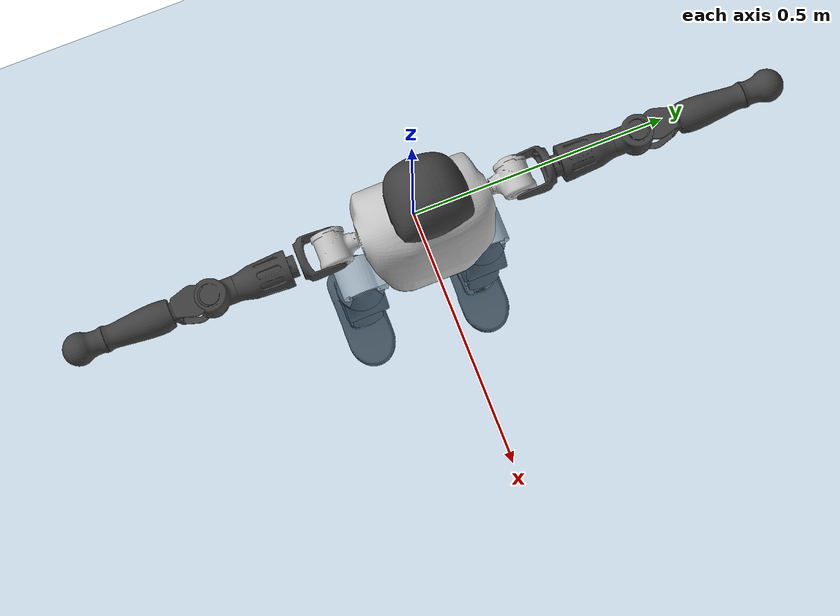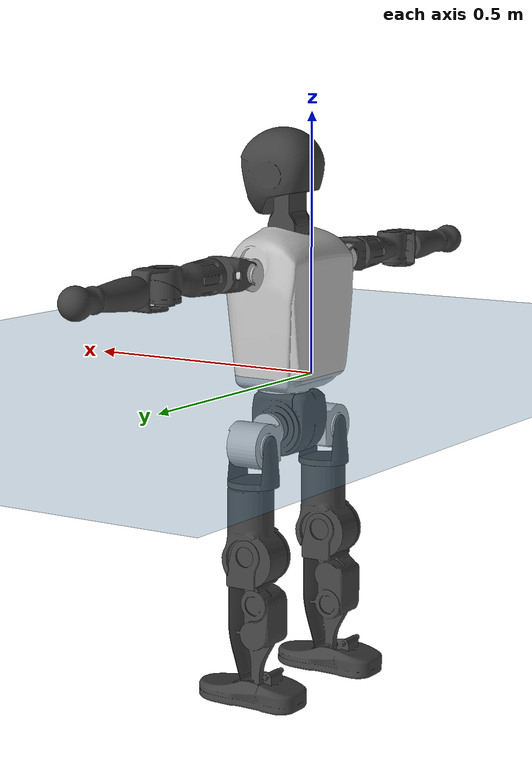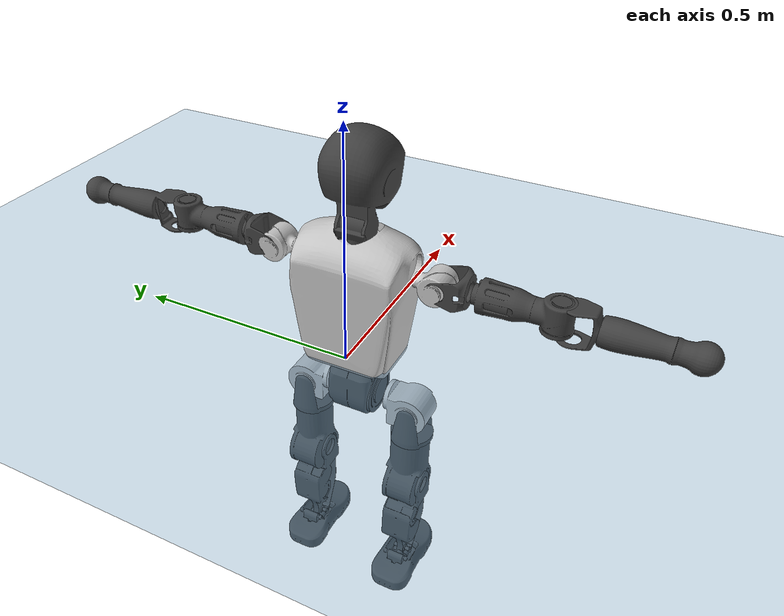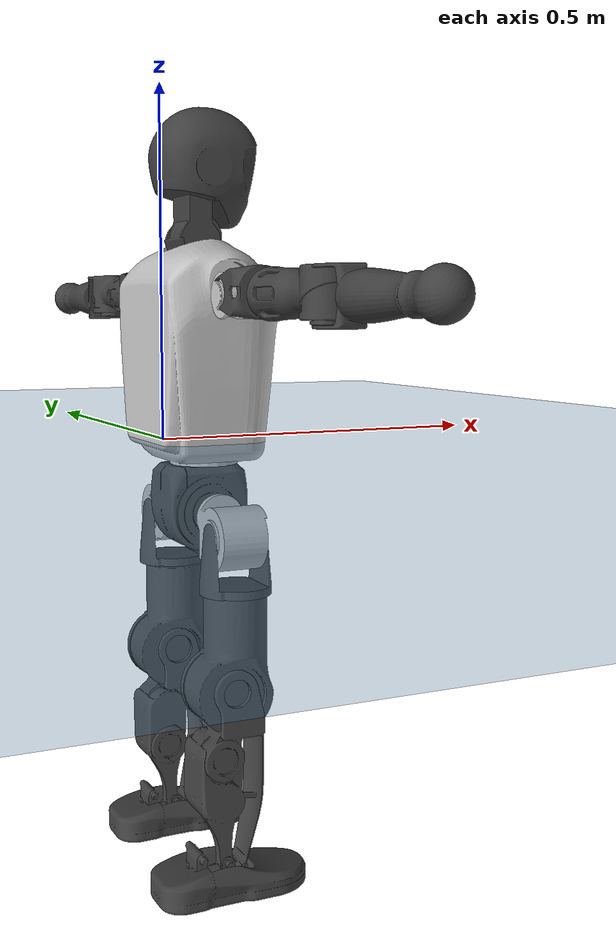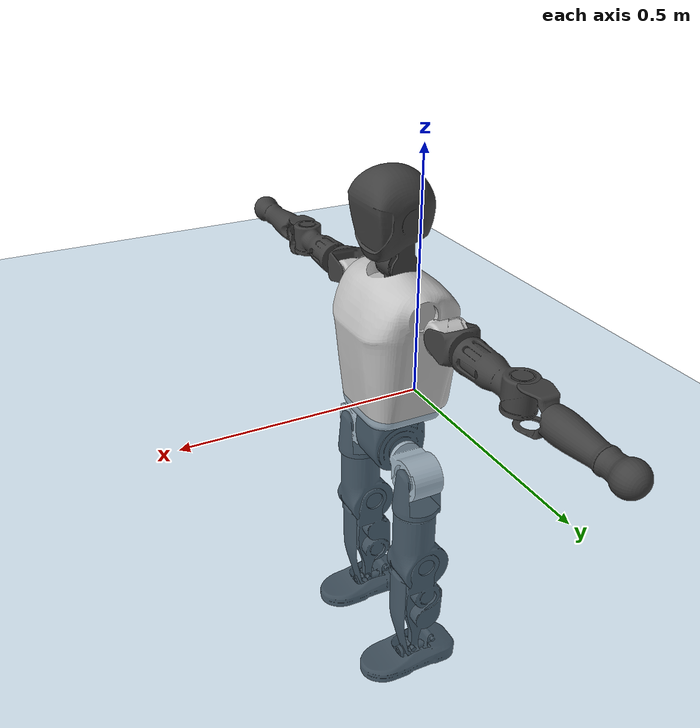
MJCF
<mujoco model="T1">
  <compiler angle="radian" assetdir="assets" balanceinertia="true" inertiafromgeom="false"/>

  <option timestep="0.005" density="1.2" viscosity="2e-05"/>

  <size nkey="1"/>

  <visual>
    <quality shadowsize="8192"/>
    <map shadowclip="0.5"/>
  </visual>

  <default>
    <default class="/">
      <joint armature="0.01" damping="0.01" frictionloss="0.1"/>
      <geom contype="0" conaffinity="0" group="1" solref="-1000 -80"/>
      <site size="0.01 0.005 0.005" group="5"/>
      <general forcelimited="true" biastype="affine" gainprm="25" biasprm="0 -25 -0.6"/>
      <default class="t1">
        <geom rgba="0.25 0.25 0.25 1"/>
        <default class="visual">
          <geom type="mesh" group="2"/>
        </default>
        <default class="collision">
          <geom group="3"/>
        </default>
        <default class="foot">
          <geom size="0.1115 0.05 0.015" type="box" condim="6" group="4" priority="1" solimp="0.015 1 0.015"/>
        </default>
        <default class="reward_collision_sphere">
          <geom group="5" rgba="1 0 0 1"/>
        </default>
      </default>
    </default>
  </default>

  <asset>
    <texture type="skybox" colorspace="auto" name="//unnamed_texture_0" builtin="gradient" rgb1="0.95 0.95 0.95" rgb2="0.95 0.95 0.95" width="100" height="600"/>
    <texture type="2d" colorspace="auto" name="texplane" builtin="checker" rgb1="0.345 0.575 0.748" rgb2="0.345 0.575 0.748" markrgb="1 1 1" width="512" height="512"/>
    <material name="MatPlane" class="/" texture="texplane" texuniform="true" texrepeat="2 2" specular="0.9"/>
    <mesh name="Trunk" class="/" file="Trunk.stl"/>
    <mesh name="H1" class="/" file="H1.stl"/>
    <mesh name="H2" class="/" file="H2.stl"/>
    <mesh name="AL1" class="/" file="AL1.stl"/>
    <mesh name="AL2" class="/" file="AL2.stl"/>
    <mesh name="AL3" class="/" file="AL3.stl"/>
    <mesh name="left_hand_link" class="/" file="left_hand_link.stl"/>
    <mesh name="AR1" class="/" file="AR1.stl"/>
    <mesh name="AR2" class="/" file="AR2.stl"/>
    <mesh name="AR3" class="/" file="AR3.stl"/>
    <mesh name="right_hand_link" class="/" file="right_hand_link.stl"/>
    <mesh name="Waist" class="/" file="Waist.stl"/>
    <mesh name="Hip_Pitch_Left" class="/" file="Hip_Pitch_Left.stl"/>
    <mesh name="Hip_Roll_Left" class="/" file="Hip_Roll_Left.stl"/>
    <mesh name="Hip_Yaw_Left" class="/" file="Hip_Yaw_Left.stl"/>
    <mesh name="Shank_Left" class="/" file="Shank_Left.stl"/>
    <mesh name="Ankle_Cross_Left" class="/" file="Ankle_Cross_Left.stl"/>
    <mesh name="left_foot_link" class="/" file="left_foot_link.stl"/>
    <mesh name="Hip_Pitch_Right" class="/" file="Hip_Pitch_Right.stl"/>
    <mesh name="Hip_Roll_Right" class="/" file="Hip_Roll_Right.stl"/>
    <mesh name="Hip_Yaw_Right" class="/" file="Hip_Yaw_Right.stl"/>
    <mesh name="Shank_Right" class="/" file="Shank_Right.stl"/>
    <mesh name="Ankle_Cross_Right" class="/" file="Ankle_Cross_Right.stl"/>
    <mesh name="right_foot_link" class="/" file="right_foot_link.stl"/>
  </asset>

  <worldbody>
    <geom name="floor" class="/" size="100 100 0.125" type="plane" group="0" material="MatPlane"/>
    <light name="toplight_shadow" class="/" pos="0 0 5" dir="0.0990148 0.0990148 -0.990148" type="directional" ambient="0.04 0.04 0.04" diffuse="0.55 0.55 0.55" specular="0.12 0.12 0.12"/>
    <light name="toplight_fill" class="/" pos="0 0 5" dir="0.0990148 0.0990148 -0.990148" type="directional" castshadow="false" ambient="0.04 0.04 0.04" diffuse="0.3 0.3 0.3" specular="0.08 0.08 0.08"/>
    <body name="trunk" childclass="t1" pos="0.000820373 -0.000330027 0.00411815" quat="0.999997 0.000410166 -0.00229458 0.000901855">
      <inertial pos="0.0476819 -0.00167298 0.0985421" quat="0.999967 -0.00201707 -0.00781481 0.00127881" mass="12.5593" diaginertia="0.0464691 0.210431 0.0381779"/>
      <joint name="//unnamed_joint_0" type="free" armature="0" damping="0" frictionloss="0"/>
      <geom name="//unnamed_geom_1" class="visual" rgba="0.76 0.76 0.76 1" mesh="Trunk"/>
      <geom name="//unnamed_geom_2" class="collision" size="0.0749492 0.0999323 0.149898" pos="0.0520538 0 0.110475" type="box"/>
      <geom name="//unnamed_geom_3" class="reward_collision_sphere" size="0.114922" pos="0.0520538 0 0.0920621"/>
      <geom name="//unnamed_geom_4" class="reward_collision_sphere" size="0.0149898" pos="0.0520538 0.102832 0"/>
      <geom name="//unnamed_geom_5" class="reward_collision_sphere" size="0.0149898" pos="0.0520538 -0.102832 0"/>
      <geom name="//unnamed_geom_6" class="reward_collision_sphere" size="0.0149898" pos="0.0520538 0.129447 0.165712"/>
      <geom name="//unnamed_geom_7" class="reward_collision_sphere" size="0.0149898" pos="0.0520538 -0.129447 0.165712"/>
      <site name="imu" pos="0.019678 -0.00952938 0.00240095" size="0.00999323"/>
      <camera name="track" pos="0 -2.41957 0" quat="0.707107 0.707107 0 0" mode="trackcom"/>
      <camera name="ego_camera" pos="0.105843 0 0.386661" quat="-0.5 -0.5 0.5 0.5"/>
      <body name="H1" pos="0.0530602 0.00013121 0.222006" quat="0.999999 -1.56003e-05 -0.000641333 0.00158799">
        <inertial pos="-0.0029442 -0.000999664 0.055327" quat="0.766051 -0.0169367 -0.0020012 0.642554" mass="0.455309" diaginertia="0.000123405 0.000575507 0.000103231"/>
        <joint name="AAHead_yaw" pos="0 0 0" axis="0.0050711 -0.00593378 0.99997" range="-1.45749 1.52452" armature="0.0107737" damping="0" frictionloss="0.10867"/>
        <geom name="//unnamed_geom_8" class="visual" mesh="H1"/>
        <body name="H2" pos="-0.00385436 0.00216871 0.0551254" quat="0.999997 0.00102914 0.00164851 -0.00117165">
          <inertial pos="0.00671362 0.00321296 0.0917472" quat="0.988526 0.106136 -0.073887 -0.0780478" mass="0.661489" diaginertia="0.00100365 0.00503497 0.00113552"/>
          <joint name="Head_pitch" pos="0 0 0" axis="0.0038129 -0.999829 -0.0180948" range="-1.19767 0.269339" armature="0.00852022" damping="0" frictionloss="0.0770003"/>
          <geom name="//unnamed_geom_9" class="visual" mesh="H2"/>
          <geom name="//unnamed_geom_10" class="collision" size="0.0799458" pos="0.00867563 0 0.101268"/>
          <geom name="//unnamed_geom_11" class="reward_collision_sphere" size="0.089939" pos="0.0173513 0 0.0920621"/>
        </body>
      </body>
      <body name="AL1" pos="0.0461208 0.129304 0.202506" quat="1 -0.000470454 -0.000748146 -0.000461946">
        <inertial pos="0.00398756 0.0528013 -0.0014373" quat="0.504955 0.500528 -0.499805 0.494659" mass="0.529914" diaginertia="0.000690977 0.00311259 0.00018896"/>
        <joint name="Left_Shoulder_Pitch" pos="0 0 0" axis="0.000677878 1 0.000452388" range="-3.34076 1.21406" armature="0.0105585" damping="0.0103323" frictionloss="0.0917396"/>
        <geom name="//unnamed_geom_12" class="visual" rgba="0.76 0.76 0.76 1" mesh="AL1"/>
        <body name="AL2" pos="0.0036936 0.0566545 0.00483833" quat="0.999998 -0.00134277 -0.00152341 5.09899e-05">
          <inertial pos="0.00185189 0.0455983 0.00294708" quat="0.488559 0.507409 -0.493582 0.510121" mass="0.155725" diaginertia="0.000190484 0.000893764 0.000119973"/>
          <joint name="Left_Shoulder_Roll" pos="0 0 0" axis="-0.999786 -0.0181955 -0.00981147" range="-1.58639 1.69175" armature="0.0113279" damping="0.00885756" frictionloss="0.120229"/>
          <geom name="//unnamed_geom_13" class="visual" mesh="AL2"/>
          <body name="AL3" pos="0.00454174 0.0725194 -0.000983716" quat="0.999999 0.00120827 -0.000652158 0.000519265">
            <inertial pos="-0.00265409 0.102972 -0.00319399" quat="0.707584 0.70662 0.00368537 -0.000231686" mass="1.0097" diaginertia="0.00646071 0.0326598 0.000409023"/>
            <joint name="Left_Elbow_Pitch" pos="0 0 0" axis="-0.0151181 -0.999851 0.00835178" range="-2.22718 2.27948" armature="0.00895133" damping="0.0101408" frictionloss="0.107656"/>
            <geom name="//unnamed_geom_14" class="visual" mesh="AL3"/>
            <geom name="//unnamed_geom_15" class="collision" size="0.0299797 0.0749492" pos="0 0.0604892 0" quat="0.707105 0.707108 0 0" type="cylinder"/>
            <geom name="//unnamed_geom_16" class="reward_collision_sphere" size="0.0359756"/>
            <body name="left_hand_link" pos="0.000539925 0.181844 -0.00491414" quat="1 0.00039375 -0.000852634 -0.000336098">
              <inertial pos="-0.000139188 0.133755 -0.000502372" quat="0.709804 0.704397 0.000547663 -0.0016357" mass="0.301068" diaginertia="0.0039801 0.0196463 0.00013319"/>
              <joint name="Left_Elbow_Yaw" pos="0 0 0" axis="-0.00144793 0.0144178 0.999895" stiffness="0.000304337" range="-2.39984 0.0129286" armature="0.0114468" damping="0.0147998" frictionloss="0.0989189"/>
              <geom name="//unnamed_geom_17" class="visual" mesh="left_hand_link"/>
              <geom name="//unnamed_geom_18" class="collision" size="0.0299797 0.0874407" pos="0 0.157272 0" quat="0.707105 0.707108 0 0" type="cylinder"/>
              <geom name="//unnamed_geom_19" class="reward_collision_sphere" size="0.0499661"/>
              <geom name="//unnamed_geom_20" class="reward_collision_sphere" size="0.0349763" pos="0 0.133076 0"/>
              <geom name="//unnamed_geom_21" class="reward_collision_sphere" size="0.0349763" pos="0 0.260104 0"/>
            </body>
          </body>
        </body>
      </body>
      <body name="AR1" pos="0.0485391 -0.124473 0.199376" quat="0.999999 -0.00164614 4.8234e-05 0.000240084">
        <inertial pos="-0.000423097 -0.0558747 0.00251363" quat="0.500595 0.495769 -0.508346 0.495179" mass="0.511657" diaginertia="0.000672482 0.00324059 0.000189575"/>
        <joint name="Right_Shoulder_Pitch" pos="0 0 0" axis="0.0134487 -0.999844 -0.0114808" stiffness="0.00997648" range="-1.23547 3.30295" armature="0.00902851" damping="0.0126352" frictionloss="0.109967"/>
        <geom name="//unnamed_geom_22" class="visual" rgba="0.76 0.76 0.76 1" mesh="AR1"/>
        <body name="AR2" pos="0.000711054 -0.053695 0.00355712" quat="1 -4.46607e-05 -3.03063e-05 4.09805e-05">
          <inertial pos="0.0015301 -0.0466034 -0.000484715" quat="0.511403 0.486827 -0.512153 0.489046" mass="0.165025" diaginertia="0.000184388 0.000866484 0.000120805"/>
          <joint name="Right_Shoulder_Roll" pos="0 0 0" axis="-0.999983 -0.00525228 -0.00269308" range="-1.68777 1.55731" armature="0.00973466" damping="0.0128646" frictionloss="0.0856014"/>
          <geom name="//unnamed_geom_23" class="visual" mesh="AR2"/>
          <body name="AR3" pos="0.00320067 -0.0752795 -0.00263249" quat="0.999999 0.000970928 -0.000748748 0.00019093">
            <inertial pos="0.00458259 -0.10257 0.00279101" quat="0.705851 0.708349 -0.00398582 2.46423e-05" mass="0.989928" diaginertia="0.00650098 0.0348962 0.000411278"/>
            <joint name="Right_Elbow_Pitch" pos="0 0 0" axis="-0.00398478 0.999991 0.00132869" stiffness="0.0221584" range="-2.25825 2.24944" armature="0.0109106" damping="0.00222012" frictionloss="0.0903512"/>
            <geom name="//unnamed_geom_24" class="visual" mesh="AR3"/>
            <geom name="//unnamed_geom_25" class="collision" size="0.0299797 0.0749492" pos="0 -0.0604892 0" quat="0.707105 0.707108 0 0" type="cylinder"/>
            <geom name="//unnamed_geom_26" class="reward_collision_sphere" size="0.0359756"/>
            <body name="right_hand_link" pos="-0.00101612 -0.176441 -0.00477946" quat="1 -0.000418238 8.104e-05 0.000459947">
              <inertial pos="0.000896139 -0.133982 -0.00154404" quat="0.707081 0.707043 -0.00858526 -0.00721844" mass="0.320138" diaginertia="0.00404678 0.0203297 0.000142139"/>
              <joint name="Right_Elbow_Yaw" pos="0 0 0" axis="-0.00132261 -0.00579066 0.999982" range="-0.0390003 2.44447" armature="0.00902378" damping="0.00300691" frictionloss="0.106993"/>
              <geom name="//unnamed_geom_27" class="visual" mesh="right_hand_link"/>
              <geom name="//unnamed_geom_28" class="collision" size="0.0299797 0.0874407" pos="0 -0.157272 0" quat="0.707105 0.707108 0 0" type="cylinder"/>
              <geom name="//unnamed_geom_29" class="reward_collision_sphere" size="0.0499661"/>
              <geom name="//unnamed_geom_30" class="reward_collision_sphere" size="0.0349763" pos="0 -0.133076 0"/>
              <geom name="//unnamed_geom_31" class="reward_collision_sphere" size="0.0349763" pos="0 -0.260104 0"/>
            </body>
          </body>
        </body>
      </body>
      <body name="Waist" pos="0.0519896 -0.00437788 -0.108025" quat="1 8.42661e-05 0.000400298 -0.00056046">
        <inertial pos="0.0033046 -0.000129064 0.00859718" quat="0.983681 -0.000192191 -0.179911 0.00198216" mass="2.65929" diaginertia="0.00272118 0.0135274 0.00322822"/>
        <joint name="Waist" pos="0 0 0" axis="0.00994722 -0.00877722 0.999912" range="-1.54391 1.58769" armature="0.00993813" damping="0.0214415" frictionloss="0.103998"/>
        <geom name="//unnamed_geom_32" class="visual" mesh="Waist"/>
        <body name="Hip_Pitch_Left" pos="0.00349585 0.123003 -0.00338224" quat="1 -3.90866e-05 -2.63601e-05 -1.30816e-05">
          <inertial pos="0.00125129 -0.00873047 -0.0117987" quat="0.976902 0.213282 0.0111354 -0.00707663" mass="0.969893" diaginertia="0.000882824 0.0038226 0.000851529"/>
          <joint name="Left_Hip_Pitch" pos="0 0 0" axis="-0.0001526 1 3.1629e-05" stiffness="0.00597409" range="-1.84446 1.57258" armature="0.00972993" damping="0.0153377" frictionloss="0.112302"/>
          <geom name="//unnamed_geom_33" class="visual" rgba="0.76 0.76 0.76 1" mesh="Hip_Pitch_Left"/>
          <body name="Hip_Roll_Left" pos="0.00158151 -0.000704125 -0.0216827" quat="1 -0.000304592 1.22087e-05 -0.000502788">
            <inertial pos="0.00103481 -0.00265225 -0.0488427" quat="0.705584 -0.0104475 -0.0104757 0.708471" mass="0.370826" diaginertia="0.000818196 0.00389047 0.000336767"/>
            <joint name="Left_Hip_Roll" pos="0 0 0" axis="-0.999961 -0.00811292 -0.00335664" stiffness="0.0060644" range="-1.58913 0.211883" armature="0.0100839" damping="0.00557999" frictionloss="0.104798"/>
            <geom name="//unnamed_geom_34" class="visual" mesh="Hip_Roll_Left"/>
            <geom name="//unnamed_geom_35" class="reward_collision_sphere" size="0.0549628"/>
            <body name="Hip_Yaw_Left" pos="0.0021794 0.00225711 -0.081156" quat="1 -0.000200131 -0.000173773 0.000222425">
              <inertial pos="-0.00328064 -0.000238811 -0.0784722" quat="0.689882 -0.0356044 -0.0285465 0.722482" mass="2.17817" diaginertia="0.0117408 0.0673139 0.00169837"/>
              <joint name="Left_Hip_Yaw" pos="0 0 0" axis="0.00596729 0.00532278 -0.999968" stiffness="0.0233732" range="-1.0026 0.977336" armature="0.0105276" damping="0.00116875" frictionloss="0.115073"/>
              <geom name="//unnamed_geom_36" class="visual" mesh="Hip_Yaw_Left"/>
              <geom name="//unnamed_geom_37" class="collision" size="0.0499661 0.0799458" type="cylinder"/>
              <body name="Shank_Left" pos="-0.0115283 -0.00352244 -0.126754" quat="0.999997 0.000181928 -0.00149879 -0.00177221">
                <inertial pos="-0.00403221 0.00586556 -0.116725" quat="0.998296 -0.00323635 -0.0281575 0.0509992" mass="1.75089" diaginertia="0.0168124 0.0889238 0.00125834"/>
                <joint name="Left_Knee_Pitch" pos="0 0 0" axis="0.00344141 0.999971 0.00674578" range="-0.0508899 2.34917" armature="0.00955386" damping="0" frictionloss="0.117453"/>
                <geom name="//unnamed_geom_38" class="visual" mesh="Shank_Left"/>
                <geom name="//unnamed_geom_39" class="collision" size="0.0499661 0.0749492" pos="0 0 -0.110475" type="cylinder"/>
                <geom name="//unnamed_geom_40" class="reward_collision_sphere" size="0.064956"/>
                <body name="Ankle_Cross_Left" pos="0.00458728 -0.00196223 -0.257831" quat="1 -0.000114947 5.76465e-05 0.000101075">
                  <inertial pos="-0.00106291 -0.00133029 -0.00635464" quat="0.459836 0.551425 0.535896 0.444181" mass="0.0769245" diaginertia="1.42138e-05 6.66104e-05 7.62792e-06"/>
                  <joint name="Left_Ankle_Pitch" pos="0 0 0" axis="-0.00258898 0.999996 -0.000788934" range="-0.895815 0.407175" armature="0.00958164" damping="0" frictionloss="0.10124"/>
                  <geom name="//unnamed_geom_41" class="visual" mesh="Ankle_Cross_Left"/>
                  <body name="left_foot_link" pos="-0.00155814 0.00082654 -0.011072" quat="1 -8.2713e-05 -0.000158504 -0.000122166">
                    <inertial pos="0.000175846 -3.20664e-05 -0.013662" quat="0.000352917 0.620507 -8.14274e-05 0.784201" mass="0.668741" diaginertia="0.00131133 0.00591953 0.00139937"/>
                    <joint name="Left_Ankle_Roll" pos="0 0 0" axis="-0.999995 0.000694558 -0.00302987" stiffness="0.00164844" range="-0.42696 0.467409" armature="0.0098671" damping="0" frictionloss="0.101763"/>
                    <geom name="//unnamed_geom_42" class="visual" mesh="left_foot_link"/>
                    <geom name="left_foot" class="foot" size="0.0972102 0.0428566 0.0154274" pos="0.00867563 0 -0.0138093"/>
                    <geom name="//unnamed_geom_44" class="reward_collision_sphere" size="0.0519648" pos="0.00867563 0 -0.0138093"/>
                    <geom name="//unnamed_geom_45" class="reward_collision_sphere" size="0.0299797" pos="0.0824184 -0.027825 -0.0138093"/>
                    <geom name="//unnamed_geom_46" class="reward_collision_sphere" size="0.0299797" pos="-0.0607294 -0.027825 -0.0138093"/>
                    <site name="left_foot" class="foot" pos="0.00867563 0 -0.0138093" size="0.00999323"/>
                  </body>
                </body>
              </body>
            </body>
          </body>
        </body>
        <body name="Hip_Pitch_Right" pos="0.000885473 -0.128984 -0.00310587" quat="0.999998 -3.13792e-05 0.00183483 -0.000605043">
          <inertial pos="-7.6076e-05 0.0138998 -0.0138891" quat="0.973634 -0.227123 0.0212406 -0.000349884" mass="1.05105" diaginertia="0.000938466 0.00391187 0.000859511"/>
          <joint name="Right_Hip_Pitch" pos="0 0 0" axis="-0.00302516 -0.999983 0.00490723" range="-1.57205 1.85418" armature="0.00965478" damping="0.00962431" frictionloss="0.0775006"/>
          <geom name="//unnamed_geom_47" class="visual" rgba="0.76 0.76 0.76 1" mesh="Hip_Pitch_Right"/>
          <body name="Hip_Roll_Right" pos="0.00290343 -0.0018718 -0.0199798" quat="1 0.000168445 0.000608039 0.000187218">
            <inertial pos="-0.000940232 -0.000800634 -0.0481167" quat="0.708408 -0.00545449 -0.00656941 0.705751" mass="0.383587" diaginertia="0.000915427 0.00401349 0.000348466"/>
            <joint name="Right_Hip_Roll" pos="0 0 0" axis="-0.999972 -0.0031058 -0.0067671" stiffness="0.0017758" range="-0.208391 1.52893" armature="0.0098009" damping="0" frictionloss="0.0890089"/>
            <geom name="//unnamed_geom_48" class="visual" mesh="Hip_Roll_Right"/>
            <geom name="//unnamed_geom_49" class="reward_collision_sphere" size="0.0549628"/>
            <body name="Hip_Yaw_Right" pos="-0.00237134 0.00108264 -0.0780303" quat="1 0.000629977 -0.000123372 -0.000253295">
              <inertial pos="-0.00359932 -0.00536614 -0.0798286" quat="0.714318 -0.0325073 -0.0363286 0.698121" mass="2.2489" diaginertia="0.0129384 0.071748 0.00178574"/>
              <joint name="Right_Hip_Yaw" pos="0 0 0" axis="-0.000248833 0.0121865 -0.999926" range="-0.968385 1.01976" armature="0.00995182" damping="0" frictionloss="0.0989171"/>
              <geom name="//unnamed_geom_50" class="visual" mesh="Hip_Yaw_Right"/>
              <geom name="//unnamed_geom_51" class="collision" size="0.0499661 0.0799458" type="cylinder"/>
              <body name="Shank_Right" pos="-0.0158035 -0.00223877 -0.128191" quat="1 1.92338e-05 0.000140055 0.000112287">
                <inertial pos="0.000606077 0.00217025 -0.112512" quat="0.999181 -0.0112304 -0.0361457 -0.0142875" mass="1.87006" diaginertia="0.0176756 0.0940878 0.00139137"/>
                <joint name="Right_Knee_Pitch" pos="0 0 0" axis="0.00647344 -0.999979 -0.000336318" stiffness="0.0060574" range="-2.33267 0.0613333" armature="0.00975961" damping="0.00717098" frictionloss="0.103883"/>
                <geom name="//unnamed_geom_52" class="visual" mesh="Shank_Right"/>
                <geom name="//unnamed_geom_53" class="collision" size="0.0499661 0.0749492" pos="0 0 -0.110475" type="cylinder"/>
                <geom name="//unnamed_geom_54" class="reward_collision_sphere" size="0.064956"/>
                <body name="Ankle_Cross_Right" pos="-0.000607956 -0.00131448 -0.255182" quat="0.999999 -0.000311868 -0.000452675 -0.000869293">
                  <inertial pos="-0.00419566 -0.000480971 -0.00910499" quat="0.443055 0.550464 0.552955 0.441512" mass="0.0703915" diaginertia="1.37145e-05 6.27036e-05 7.2647e-06"/>
                  <joint name="Right_Ankle_Pitch" pos="0 0 0" axis="-3.35111e-05 -1 -3.92335e-05" range="-0.46643 0.864731" armature="0.00878094" damping="0.0147331" frictionloss="0.0956475"/>
                  <geom name="//unnamed_geom_55" class="visual" mesh="Ankle_Cross_Right"/>
                  <body name="right_foot_link" pos="-0.00358979 -0.00302176 -0.0119649" quat="1 -0.000112957 -0.000295004 -0.000139739">
                    <inertial pos="0.00117916 -0.00170942 -0.0132762" quat="-0.00266827 0.624582 -0.0105182 0.780884" mass="0.662383" diaginertia="0.00133263 0.00619998 0.00140325"/>
                    <joint name="Right_Ankle_Roll" pos="0 0 0" axis="-1 0.00015666 -0.000488533" range="-0.489806 0.447924" armature="0.0111698" damping="0" frictionloss="0.0712193"/>
                    <geom name="//unnamed_geom_56" class="visual" mesh="right_foot_link"/>
                    <geom name="right_foot" class="foot" size="0.100432 0.0587283 0.0119164" pos="0.00867563 0 -0.0138093"/>
                    <geom name="//unnamed_geom_58" class="reward_collision_sphere" size="0.0399729"/>
                    <geom name="//unnamed_geom_59" class="reward_collision_sphere" size="0.0299797" pos="0.00867563 0 -0.0138093"/>
                    <geom name="//unnamed_geom_60" class="reward_collision_sphere" size="0.0299797" pos="0.0824184 0.027825 -0.0138093"/>
                    <geom name="//unnamed_geom_61" class="reward_collision_sphere" size="0.0299797" pos="-0.0607294 0.027825 -0.0138093"/>
                    <site name="right_foot" class="foot" pos="0.00867563 0 -0.0138093" size="0.00999323"/>
                  </body>
                </body>
              </body>
            </body>
          </body>
        </body>
      </body>
    </body>
  </worldbody>

  <contact>
    <pair class="/" geom1="floor" geom2="left_foot" name="//unnamed_contact_0"/>
    <pair class="/" geom1="floor" geom2="right_foot" name="//unnamed_contact_1"/>
  </contact>

  <actuator>
    <general name="AAHead_yaw" class="/" joint="AAHead_yaw" forcerange="-7.01381 7.01381" gainprm="23.8637" biasprm="0 -23.8637 -0.60485"/>
    <general name="Head_pitch" class="/" joint="Head_pitch" forcerange="-7.32206 7.32206" gainprm="23.8637" biasprm="0 -23.8637 -0.60485"/>
    <general name="Left_Shoulder_Pitch" class="/" joint="Left_Shoulder_Pitch" forcerange="-16.9692 16.9692" gainprm="23.8637" biasprm="0 -23.8637 -0.60485"/>
    <general name="Left_Shoulder_Roll" class="/" joint="Left_Shoulder_Roll" forcerange="-19.4518 19.4518" gainprm="23.8637" biasprm="0 -23.8637 -0.60485"/>
    <general name="Left_Elbow_Pitch" class="/" joint="Left_Elbow_Pitch" forcerange="-19.8525 19.8525" gainprm="23.8637" biasprm="0 -23.8637 -0.60485"/>
    <general name="Left_Elbow_Yaw" class="/" joint="Left_Elbow_Yaw" forcerange="-18.3194 18.3194" gainprm="23.8637" biasprm="0 -23.8637 -0.60485"/>
    <general name="Right_Shoulder_Pitch" class="/" joint="Right_Shoulder_Pitch" forcerange="-20.0186 20.0186" gainprm="23.8637" biasprm="0 -23.8637 -0.60485"/>
    <general name="Right_Shoulder_Roll" class="/" joint="Right_Shoulder_Roll" forcerange="-18.0919 18.0919" gainprm="23.8637" biasprm="0 -23.8637 -0.60485"/>
    <general name="Right_Elbow_Pitch" class="/" joint="Right_Elbow_Pitch" forcerange="-17.6504 17.6504" gainprm="23.8637" biasprm="0 -23.8637 -0.60485"/>
    <general name="Right_Elbow_Yaw" class="/" joint="Right_Elbow_Yaw" forcerange="-18.5798 18.5798" gainprm="23.8637" biasprm="0 -23.8637 -0.60485"/>
    <general name="Waist" class="/" joint="Waist" forcerange="-30.1023 30.1023" gainprm="23.8637" biasprm="0 -23.8637 -0.60485"/>
    <general name="Left_Hip_Pitch" class="/" joint="Left_Hip_Pitch" forcerange="-44.3056 44.3056" gainprm="23.8637" biasprm="0 -23.8637 -0.60485"/>
    <general name="Left_Hip_Roll" class="/" joint="Left_Hip_Roll" forcerange="-24.9076 24.9076" gainprm="23.8637" biasprm="0 -23.8637 -0.60485"/>
    <general name="Left_Hip_Yaw" class="/" joint="Left_Hip_Yaw" forcerange="-30.0798 30.0798" gainprm="23.8637" biasprm="0 -23.8637 -0.60485"/>
    <general name="Left_Knee_Pitch" class="/" joint="Left_Knee_Pitch" forcerange="-50.8794 50.8794" gainprm="23.8637" biasprm="0 -23.8637 -0.60485"/>
    <general name="Left_Ankle_Pitch" class="/" joint="Left_Ankle_Pitch" forcerange="-19.9168 19.9168" gainprm="23.8637" biasprm="0 -23.8637 -0.60485"/>
    <general name="Left_Ankle_Roll" class="/" joint="Left_Ankle_Roll" forcerange="-14.688 14.688" gainprm="23.8637" biasprm="0 -23.8637 -0.60485"/>
    <general name="Right_Hip_Pitch" class="/" joint="Right_Hip_Pitch" forcerange="-50.1879 50.1879" gainprm="23.8637" biasprm="0 -23.8637 -0.60485"/>
    <general name="Right_Hip_Roll" class="/" joint="Right_Hip_Roll" forcerange="-27.7028 27.7028" gainprm="23.8637" biasprm="0 -23.8637 -0.60485"/>
    <general name="Right_Hip_Yaw" class="/" joint="Right_Hip_Yaw" forcerange="-29.7442 29.7442" gainprm="23.8637" biasprm="0 -23.8637 -0.60485"/>
    <general name="Right_Knee_Pitch" class="/" joint="Right_Knee_Pitch" forcerange="-57.335 57.335" gainprm="23.8637" biasprm="0 -23.8637 -0.60485"/>
    <general name="Right_Ankle_Pitch" class="/" joint="Right_Ankle_Pitch" forcerange="-19.3643 19.3643" gainprm="23.8637" biasprm="0 -23.8637 -0.60485"/>
    <general name="Right_Ankle_Roll" class="/" joint="Right_Ankle_Roll" forcerange="-14.2099 14.2099" gainprm="23.8637" biasprm="0 -23.8637 -0.60485"/>
  </actuator>

  <sensor>
    <gyro site="imu" name="imu_angular_velocity"/>
    <velocimeter site="imu" name="imu_linear_velocity"/>
    <framelinvel objtype="site" objname="left_foot" name="left_foot_global_linear_velocity"/>
    <framelinvel objtype="site" objname="right_foot" name="right_foot_global_linear_velocity"/>
  </sensor>

  <keyframe>
    <key name="home" qpos="0 0 0.6385 1 0 0 0 0 0 0 1.4 0 -0.4 0 -1.4 0 0.4 0 -0.4 0 0 0.8 -0.4 0 0.4 0 0 -0.8 0.4 0"/>
  </keyframe>
</mujoco>
